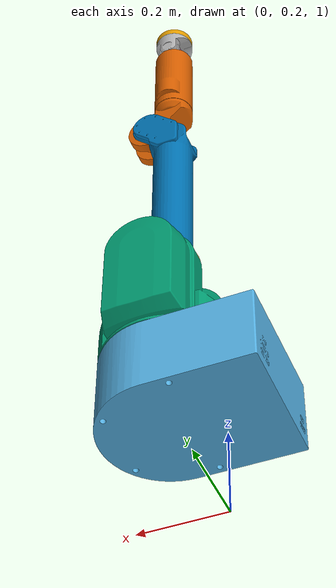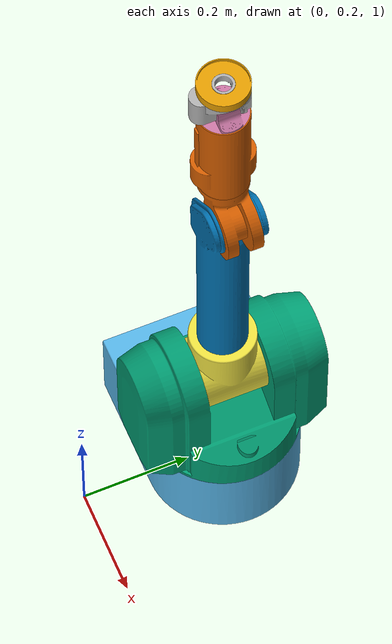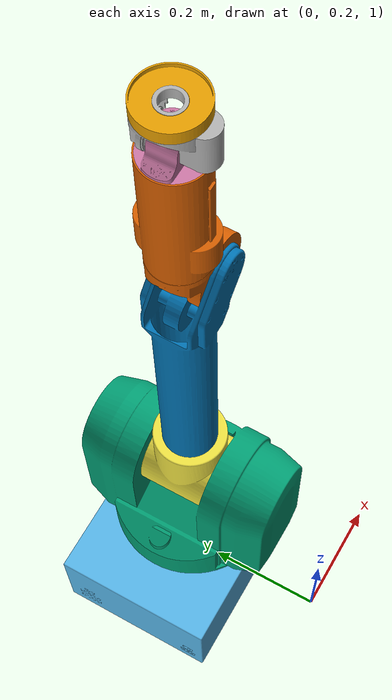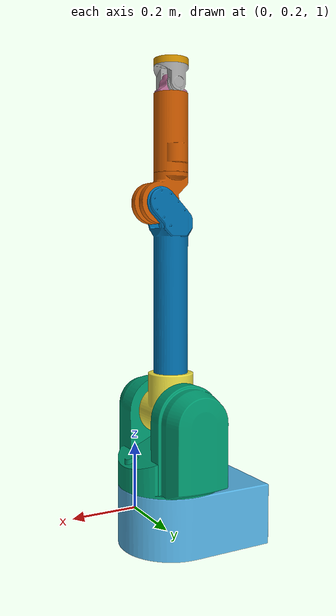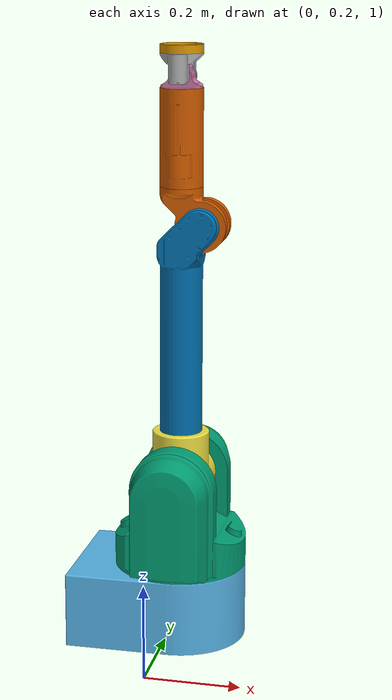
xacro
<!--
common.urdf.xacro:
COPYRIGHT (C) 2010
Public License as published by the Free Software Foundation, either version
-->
<robot name="wam"
  xmlns:xacro="http://www.ros.org/wiki/xacro">

  <!-- Includea all the WAM stuff -->
  <include filename="$(find barrett_model)/models/wam_top.urdf.xacro"/>

  <!-- Root link is in the world frame-->
  <link name = "world"/>

  <xacro:wam_7dof prefix="wam" parent_link="world" xyz="0.02 0.46 1" rpy="0 0 0" />
  <!--xacro:barrett_hand prefix="wam_left" /-->
</robot>

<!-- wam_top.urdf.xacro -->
<robot
  xmlns:xacro="http://www.ros.org/wiki/xacro"
  xmlns:controller="http://playerstage.sourceforge.net/gazebo/xmlschema/#controller">

  <!-- Some macros used by the WAM urdf -->
  <xacro:include filename="$(find barrett_model)/models/common.urdf.xacro"/>
  <!-- Definition of a single WAM arm -->
  <xacro:include filename="$(find barrett_model)/models/arm.urdf.xacro"/>
  <!-- Definition of all the different parts of a WAM arm -->
  <xacro:include filename="$(find barrett_model)/models/components.urdf.xacro"/>
  <!-- Definitions for the barrett hand -->
  <xacro:include filename="$(find barrett_model)/models/hand.urdf.xacro"/>

  <!-- Materials -->
  <material name="WAMGrey">
    <color rgba="0.7 0.7 0.7 1.0"/>
  </material>

</robot>

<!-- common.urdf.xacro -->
<robot xmlns:xacro="http://ros.org/wiki/xacro">

  <!-- Directories -->
  <xacro:property name="models_path" value="package://barrett_model/models" />
  <xacro:property name="highResModelDirectory" value="${models_path}/meshes/splitModels" />

  <!-- Constants -->
  <xacro:property name="PI" value="3.1415926535897931" />

  <!-- Gazebo macros -->
  <xacro:macro name="gazebo_reference" params="name">
    <gazebo reference="${name}">
      <turnGravityOff>
        false
      </turnGravityOff>
      <selfCollide>
        true
      </selfCollide>
    </gazebo>
  </xacro:macro>

  <!-- Gazebo joint configuration -->
  <xacro:macro name="gz_joint">
    <provideFeedback>true</provideFeedback>
    <implicitSpringDamper>true</implicitSpringDamper>
  </xacro:macro>

  <!-- Gazebo "soft" link which has compliant surface stiffness -->
  <xacro:macro name="gz_soft_link">
  </xacro:macro>

  <xacro:macro name="gz_shiny">
    <visual name='visual_shiny'>
      <xacro:if value="true">
        <material>
          <script>
            <uri>file://$(find barrett_model)/materials/barrett.material</uri>
            <name>Wam/Aluminum</name>
          </script>
        </material>
      </xacro:if>
      <xacro:if value="false">
        <material>
          <ambient>0.7 0.7 0.7 1</ambient>
          <diffuse>0.9 0.9 0.9 1</diffuse>
          <specular>0.5 0.5 0.5 0.3</specular>
          <emissive>0 0 0 0</emissive>
        </material>
      </xacro:if>
    </visual>
  </xacro:macro>

  <xacro:macro name="gz_shiny_blue">
    <visual name='visual_shiny'>
        <material>
          <script>
            <uri>file://$(find barrett_model)/materials/barrett.material</uri>
            <name>BHand/BlueAluminum</name>
          </script>
        </material>
    </visual>
  </xacro:macro>
</robot>

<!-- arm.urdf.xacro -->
<robot xmlns:xacro="http://www.ros.org/wiki/xacro">

  <xacro:include filename="$(find barrett_model)/models/common.urdf.xacro"/>
  <xacro:include filename="$(find barrett_model)/models/components.urdf.xacro"/>

  <xacro:macro name="wam_7dof" params="prefix parent_link xyz rpy">
    <xacro:wam prefix="${prefix}" parent_link="${parent_link}" xyz="${xyz}" rpy="${rpy}"/>
    <xacro:wam_wrist prefix="${prefix}"/>
  </xacro:macro>

  <xacro:macro name="wam_4dof" params="prefix parent_link xyz rpy">
    <xacro:wam prefix="${prefix}" parent_link="${parent_link}" xyz="${xyz}" rpy="${rpy}"/>
    <xacro:wam_stump prefix="${prefix}"/>
  </xacro:macro>

  <!-- upper arm only -->
  <xacro:macro name="wam" params="prefix parent_link xyz rpy">
    <xacro:wam_base prefix="${prefix}" parent_link="${parent_link}" xyz="${xyz}" rpy="${rpy}"/>
    <xacro:wam_shoulder_yaw prefix="${prefix}"/>
    <xacro:wam_shoulder_pitch prefix="${prefix}"/>
    <xacro:wam_upper_arm prefix="${prefix}"/>
  </xacro:macro>

  <!-- forearm with actuation "wrist" -->
  <xacro:macro name="wam_wrist" params="prefix">
    <xacro:wam_forearm prefix="${prefix}"/>
    <xacro:wam_wrist_yaw prefix="${prefix}"/>
    <xacro:wam_wrist_pitch prefix="${prefix}"/>
    <xacro:wam_palm prefix="${prefix}"/>
  </xacro:macro>

</robot>

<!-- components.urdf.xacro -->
<robot xmlns:xacro="http://ros.org/wiki/xacro">

  <xacro:include filename="$(find barrett_model)/models/hand.urdf.xacro"/>
  <xacro:include filename="$(find barrett_model)/models/common.urdf.xacro"/>
  <xacro:property name="b" value="0.5"/>

  <!-- Upper arm macros -->
  <xacro:macro name="wam_base" params="prefix parent_link xyz rpy">
    <joint name="${prefix}/wam_fixed_joint" type="fixed">
      <parent link="${parent_link}"/>
      <child link="${prefix}/base_link"/>
      <origin xyz="${xyz}" rpy="${rpy}"/>
    </joint>

    <gazebo reference="${prefix}/base_link">
      <xacro:gz_shiny/>
    </gazebo>

    <link name = "${prefix}/base_link">
      <inertial>
        <origin xyz="0 0 0" />
        <mass value="1" />
        <inertia
          ixx="0.1" ixy="0"   ixz="0"
                  iyy="0.1"   iyz="0"
                            izz="0.1" />
      </inertial>
      <visual>
        <geometry>
          <mesh filename="${models_path}/sw_meshes/base_link_fine.stl"/>
        </geometry>
      </visual>
      <collision>
        <geometry>
          <mesh filename="${models_path}/sw_meshes/base_link_convex.dae"/>
        </geometry>
      </collision>
    </link>
  </xacro:macro>

  <xacro:macro name="wam_shoulder_yaw" params="prefix">
    <joint name="${prefix}/base_yaw_joint" type="revolute">
      <parent link="${prefix}/base_link"/>
      <child link="${prefix}/shoulder_yaw_link"/>
      <origin xyz="0 0 0.346" rpy="0 0 0"/>
      <axis xyz="0 0 1"/>
      <limit effort="60" lower="-2.6" upper="2.6" velocity="2.0"/>
      <dynamics damping="${1.8*b}" friction="0"/>
    </joint>
    <gazebo reference="${prefix}/base_yaw_joint">
      <xacro:gz_joint/>
    </gazebo>

    <gazebo reference="${prefix}/shoulder_yaw_link">
      <xacro:gz_shiny/>
    </gazebo>

    <link name="${prefix}/shoulder_yaw_link" >
      <inertial>
        <origin xyz="-.00443422 -.00066489 -0.1289039 " />
        <mass value="5.0" />
        <inertia
          ixx=".13488033"  ixy="-0.00012485"   ixz="0.00213041"
                           iyy=".09046330"    iyz="-.00068555"
                                              izz=".11328369" />
      </inertial>
      <visual>
        <geometry>
          <mesh filename="${models_path}/sw_meshes/shoulder_link_fine.stl"/>
        </geometry>
      </visual>
      <collision>
        <geometry>
          <mesh filename="${models_path}/sw_meshes/shoulder_link_convex_decomposition.dae"/>
        </geometry>
      </collision>
    </link>
  </xacro:macro>

  <xacro:macro name="wam_shoulder_pitch" params="prefix">
    <joint name="${prefix}/shoulder_pitch_joint" type="revolute">
      <parent link="${prefix}/shoulder_yaw_link"/>
      <child link="${prefix}/shoulder_pitch_link"/>
      <origin xyz="0 0 0" rpy="${-PI/2} 0 0"/>
      <axis xyz="0 0 1"/>
      <limit effort="60" lower="-1.985" upper="1.985" velocity="2.0"/>
      <dynamics damping="${0.5*b}" friction="0"/>
    </joint>
    <gazebo reference="${prefix}/shoulder_pitch_joint">
      <xacro:gz_joint/>
    </gazebo>
    <gazebo reference="${prefix}/shoulder_pitch_link">
      <xacro:gz_shiny/>
    </gazebo>

    <link name="${prefix}/shoulder_pitch_link" >
      <visual>
        <geometry>
          <mesh filename="${models_path}/sw_meshes/shoulder_pitch_link_fine.stl"/>
        </geometry>
      </visual>
      <inertial>
        <origin xyz="-.00236981 -.01542114 .03105614 " />
        <mass value="3.87493756" />
        <inertia
          ixx="0.02140958"  ixy="-0.00002461"  ixz="0.00027172"
                            iyy="0.015589060"  iyz="0.0018192"
                                               izz="0.01377875" />
      </inertial>
      <collision>
        <geometry>
          <mesh filename="${models_path}/sw_meshes/shoulder_pitch_link_convex.dae"/>
        </geometry>
      </collision>
    </link>
  </xacro:macro>

  <xacro:macro name="wam_upper_arm" params="prefix">
    <joint name="${prefix}/shoulder_yaw_joint" type="revolute">
      <parent link="${prefix}/shoulder_pitch_link"/>
      <child link="${prefix}/upper_arm_link"/>
      <origin xyz="0 0 0" rpy="${PI/2} 0 0"/>
      <axis xyz="0 0 1"/>
      <limit effort="45" lower="-2.8" upper="2.8" velocity="2.0"/>
      <dynamics damping="${1.5*b}" friction="0"/>
    </joint>
    <gazebo reference="${prefix}/shoulder_yaw_joint">
      <xacro:gz_joint/>
    </gazebo>
    <gazebo reference="${prefix}/upper_arm_link">
      <xacro:gz_shiny/>
    </gazebo>

    <link name="${prefix}/upper_arm_link" >
      <inertial>
        <origin xyz="0.00683258580000000 0.000033090000000 0.392492300000000" />
        <mass value="2.20228141" />
        <inertia
          ixx=".05911077"  ixy="-0.00000738"  ixz="-0.00249612"
                           iyy="0.05927043"   iyz="0.00001767"
                                              izz="0.0032455" />
      </inertial>
      <visual>
        <geometry>
          <mesh filename="${models_path}/sw_meshes/upper_arm_link_fine.stl"/>
        </geometry>
      </visual>
      <collision>
        <geometry>
          <mesh filename="${models_path}/sw_meshes/upper_arm_link_convex_decomposition.dae"/>
        </geometry>
      </collision>
    </link>
  </xacro:macro>

  <!-- Forearm macros -->
  <xacro:macro name="wam_forearm" params="prefix">
    <joint name="${prefix}/elbow_pitch_joint" type="revolute">
      <parent link="${prefix}/upper_arm_link"/>
      <child link="${prefix}/forearm_link"/>
      <origin xyz="0.045 0 0.55" rpy="${-PI/2} 0 0"/>
      <axis xyz="0 0 1"/>
      <limit effort="30" lower="-0.9" upper="${PI}" velocity="2.00"/>
      <dynamics damping="${0.8*b}" friction="0"/>
    </joint>
    <gazebo reference="${prefix}/elbow_pitch_joint">
      <xacro:gz_joint/>
    </gazebo>
    <gazebo reference="${prefix}/forearm_link">
      <xacro:gz_shiny/>
    </gazebo>
    <link name="${prefix}/forearm_link" >
      <inertial>
        <mass value="0.50016804" />
        <origin xyz="-0.04001488 -.14271662 -.00022942 " rpy="0 0 0" />
        <inertia
          ixx="0.01491672" ixy="0.001506040000000" ixz="0.000017410000000"
                           iyy="0.002944630000000" iyz="0.000021090000000"
                                                   izz="0.014829880000000" />
      </inertial>
      <visual>
        <geometry>
          <mesh filename="${models_path}/sw_meshes/elbow_link_fine.stl"/>
        </geometry>
      </visual>
      <collision>
        <geometry>
          <mesh filename="${models_path}/sw_meshes/elbow_link_convex.dae"/>
        </geometry>
      </collision>

      <visual>
        <origin xyz="-0.045 -0.0730 0" rpy="${PI/2} 0 0" />
        <geometry>
          <mesh filename="${models_path}/sw_meshes/forearm_link_fine.stl"/>
        </geometry>
      </visual>
      <collision>
        <origin xyz="-0.045 -0.0730 0" rpy="${PI/2} 0 0" />
        <geometry>
          <mesh filename="${models_path}/sw_meshes/forearm_link_convex_decomposition.dae"/>
        </geometry>
      </collision>
    </link>
  </xacro:macro>

  <xacro:macro name="wam_wrist_yaw" params="prefix">
    <joint name="${prefix}/wrist_yaw_joint" type="revolute">
      <parent link="${prefix}/forearm_link"/>
      <child link="${prefix}/wrist_yaw_link"/>
      <origin xyz="-0.045 -0.3 0" rpy="${PI/2} 0 0"/>
      <axis xyz="0 0 1"/>
      <limit effort="10" lower="-4.55" upper="1.25" velocity="2.0"/>
      <dynamics damping="${0.5*b}" friction="0"/>
    </joint>
    <gazebo reference="${prefix}/wrist_yaw_joint">
      <xacro:gz_joint/>
    </gazebo>
    <gazebo reference="${prefix}/wrist_yaw_link">
      <xacro:gz_shiny/>
    </gazebo>
    <link name="${prefix}/wrist_yaw_link" >
      <inertial>
        <origin xyz="0.00008921 0.00435824 -0.00511217 " />
        <mass value="1.05376019" />
        <inertia  ixx="0.00005029" ixy="0.00000020"  ixz="0.00007582"
          iyy="0.00007582"  iyz="-0.00000359"
          izz="0.00006270" />
      </inertial>
      <visual>
        <origin xyz="0 0 0" rpy="0 0 0" />
        <geometry>
          <mesh filename="${models_path}/sw_meshes/wrist_yaw_link_fine.stl"/>
        </geometry>
      </visual>
      <collision>
        <origin xyz="0 0 0" rpy="0 0 0" />
        <geometry>
          <mesh filename="${models_path}/sw_meshes/wrist_yaw_link_convex_decomposition.dae"/>
        </geometry>
      </collision>
    </link>
  </xacro:macro>

  <xacro:macro name="wam_wrist_pitch" params="prefix">
    <joint name="${prefix}/wrist_pitch_joint" type="revolute">
      <parent link="${prefix}/wrist_yaw_link"/>
      <child link="${prefix}/wrist_pitch_link"/>
      <origin xyz="0 0 0" rpy="${-PI/2} 0 0"/>
      <axis xyz="0 0 1"/>
      <limit effort="10" lower="-1.5707" upper="1.5707" velocity="2.00"/>
      <dynamics damping="${0.1*b}" friction="0"/>
    </joint>
    <gazebo reference="${prefix}/wrist_pitch_joint">
      <xacro:gz_joint/>
    </gazebo>
    <gazebo reference="${prefix}/wrist_pitch_link">
      <xacro:gz_shiny/>
    </gazebo>
    <link name="${prefix}/wrist_pitch_link" >
      <inertial>
        <origin xyz="-0.00012262 -0.02468336 -0.01703194 " rpy="0 0 0" />
        <mass value="0.51797364" />
        <inertia
          ixx="0.00055516"  ixy="0.00000061"  ixz="-0.00000074"
          iyy="0.00024367"  iyz="-0.00004590"
          izz="0.00045358" />
      </inertial>
      <visual>
        <geometry>
          <mesh filename="${models_path}/sw_meshes/wrist_pitch_link_fine.stl"/>
        </geometry>
      </visual>
      <collision>
        <geometry>
          <mesh filename="${models_path}/sw_meshes/wrist_pitch_link_convex_decomposition.dae"/>
        </geometry>
      </collision>
    </link>
  </xacro:macro>

  <!-- Palm without force-torque sensor -->
  <xacro:macro name="wam_palm" params="prefix">
    <joint name="${prefix}/palm_yaw_joint" type="revolute">
      <parent link="${prefix}/wrist_pitch_link"/>
      <child link="${prefix}/wrist_palm_link"/>
      <origin xyz="0 0 0" rpy="${PI/2} 0 0"/>
      <axis xyz="0 0 1"/>
      <limit effort="10" lower="-3.0" upper="3.0" velocity="2.00"/><!-- 2.95 is a limit taken in from 3 due to saftey and differences between arms. -->
      <dynamics damping="${0.3*b}" friction="0"/>
    </joint>
    <gazebo reference="${prefix}/palm_yaw_joint">
      <xacro:gz_joint/>
    </gazebo>
    <gazebo reference="${prefix}/wrist_palm_link">
      <xacro:gz_shiny/>
    </gazebo>
    <link name="${prefix}/wrist_palm_link" >
      <inertial>
        <origin xyz="0.0 0.0 0.055" rpy="0 0 0" />
        <mass value="0.08286134" />
        <inertia  ixx="0.00010859" ixy="0.00000000"  ixz="-0.00000000"
          iyy="0.00020683"  iyz="-0.0000000"
          izz="0.00010851" />
      </inertial>
      <visual>
        <origin xyz="0 0 0" rpy="0 0 0" />
        <geometry>
          <mesh filename="${models_path}/sw_meshes/wrist_palm_link_fine.stl"/>
        </geometry>
      </visual>
      <collision>
        <origin xyz="0 0 0" rpy="0 0 0" />
        <geometry>
          <mesh filename="${models_path}/sw_meshes/wrist_palm_link_convex.dae"/>
        </geometry>
      </collision>
    </link>
  </xacro:macro>

  <xacro:macro name="wam_wrist_palm_stump" params="prefix">
    <joint name="${prefix}/wrist_palm_stump_joint" type="fixed">
      <parent link="${prefix}/wrist_palm_link"/>
      <child link="${prefix}/wrist_palm_stump_link"/>
      <origin xyz="0 0 0.06" rpy="0 0 0"/>
    </joint>
    <link name="${prefix}/wrist_palm_stump_link" >
      <inertial>
        <mass value="0.000001" />
        <inertia
          ixx="0.0000001" ixy="0.0" ixz="0.0"
          iyy="0.0000001" iyz="0.0"
          izz="0.0000001" />
      </inertial>
    </link>
  </xacro:macro>

  <!-- Hollow forearm macros -->
          <!--iyy="0.01482988"   iyz="-0.00002109"-->

          <!--iyy="0.00007582"  iyz="-0.00000359"-->

  <!-- Palm with ForceTorque macros -->
          <!--iyy="0.00020683"  iyz="-0.0000000"-->

  <xacro:macro name="wam_stump" params="prefix">
    <joint name="${prefix}/elbow_pitch_joint" type="revolute">
      <parent link="${prefix}/upper_arm_link"/>
      <child link="${prefix}/stump_link"/>
      <origin xyz="0.045 0 0.55" rpy="${-PI/2} 0 0"/>
      <axis xyz="0 0 1"/>
      <limit effort="15" lower="-0.9" upper="${PI}" velocity="2.0"/>
      <dynamics damping="${0.1*b}" friction="0"/>
    </joint>
    <link name="${prefix}/stump_link" >
      <inertial>
        <mass value="0.408" />
        <origin xyz="-0.0195 -.02566 -.00022942 " rpy="0 0 0" />
        <inertia
          ixx="0.01491672" ixy="0.001506040000000" ixz="0.000017410000000"
                           iyy="0.002944630000000" iyz="0.000021090000000"
                                                   izz="0.014829880000000" />
      </inertial>
      <visual>
        <geometry>
          <mesh filename="${models_path}/sw_meshes/elbow_link_fine.stl"/>
        </geometry>
      </visual>
      <collision>
        <geometry>
          <mesh filename="${models_path}/sw_meshes/elbow_link_convex.dae"/>
        </geometry>
      </collision>
    </link>
  </xacro:macro>
</robot>

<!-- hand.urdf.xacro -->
<robot xmlns:xacro="http://www.ros.org/wiki/xacro">

  <xacro:include filename="$(find barrett_model)/models/common.urdf.xacro"/>

  <!-- link properties -->
  <xacro:macro name="gz_hand_link" params="soft collide contacts">
    <mu1>0.5</mu1>
    <mu2>0.5</mu2>
    <maxContacts>${contacts}</maxContacts>
    <xacro:if value="${collide}">
      <selfCollide>false</selfCollide>
    </xacro:if>
    <xacro:if value="${soft}">
      <xacro:gz_soft_link/>
      <kd>0.1</kd>
    </xacro:if>
  </xacro:macro>

  <!-- joint properties -->
  <xacro:property name="b" value="0.5"/>
  <xacro:property name="f" value="0"/>
  <xacro:macro name="gz_hand_joint" params="feedback">
    <provideFeedback>${feedback}</provideFeedback>
  </xacro:macro>

  <!-- High-level hand macro -->
  <xacro:macro name="bhand" params="parent_link prefix xyz rpy primitive">
    <xacro:bhand_palm parent_link="${parent_link}" prefix="${prefix}" xyz="${xyz}" rpy="${rpy}" primitive="${primitive}"/>
    <xacro:bhand_finger_1 prefix="${prefix}" primitive="${primitive}"/>
    <xacro:bhand_finger_2 prefix="${prefix}" primitive="${primitive}"/>
    <xacro:bhand_finger_3 prefix="${prefix}" primitive="${primitive}"/>

    <!-- don't use the gazebo gripper plugin, just slows down the sim -->
    <xacro:if value="false">
      <gazebo>
        <gripper name="bhand">
          <grasp_check>
              <attach_steps>10</attach_steps>
              <detach_steps>20</detach_steps>
              <min_contact_count>2</min_contact_count>
          </grasp_check>
          <palm_link>${prefix}/bhand_palm_link</palm_link>
          <gripper_link>${prefix}/finger_1/med_link</gripper_link>
          <gripper_link>${prefix}/finger_2/med_link</gripper_link>
          <gripper_link>${prefix}/finger_3/med_link</gripper_link>
          <gripper_link>${prefix}/finger_1/dist_link</gripper_link>
          <gripper_link>${prefix}/finger_2/dist_link</gripper_link>
          <gripper_link>${prefix}/finger_3/dist_link</gripper_link>
        </gripper>
      </gazebo>
    </xacro:if>
  </xacro:macro>

  <!-- Fingers -->
  <xacro:macro name="bhand_finger_1" params="prefix primitive">
    <xacro:bhand_finger_prox prefix="${prefix}/finger_1" primitive="${primitive}" parent_link="${prefix}/bhand_palm_link" xyz="-0.025 0.0 0.0415" rpy="0 0 -${PI/2}" axis="0 0 -1"/>
    <xacro:bhand_finger_med prefix="${prefix}/finger_1" primitive="${primitive}" parent_link="${prefix}/finger_1/prox_link" xyz="0.05 0.0 0.03390" rpy="${PI/2} 0 0"/>
    <xacro:bhand_finger_dist prefix="${prefix}/finger_1" primitive="false"/>
    <xacro:bhand_finger_tip prefix="${prefix}/finger_1"/>
  </xacro:macro>

  <xacro:macro name="bhand_finger_2" params="prefix primitive">
    <xacro:bhand_finger_prox prefix="${prefix}/finger_2" primitive="${primitive}" parent_link="${prefix}/bhand_palm_link" xyz="0.025 0.0 0.0415" rpy="0 0 -${PI/2}" axis="0 0 1"/>
    <xacro:bhand_finger_med prefix="${prefix}/finger_2" primitive="${primitive}" parent_link="${prefix}/finger_2/prox_link" xyz="0.05 0.0 0.03390" rpy="${PI/2} 0 0"/>
    <xacro:bhand_finger_dist prefix="${prefix}/finger_2" primitive="false"/>
    <xacro:bhand_finger_tip prefix="${prefix}/finger_2"/>
  </xacro:macro>

  <xacro:macro name="bhand_finger_3" params="prefix primitive">
    <xacro:bhand_finger_med prefix="${prefix}/finger_3" primitive="${primitive}" parent_link="${prefix}/bhand_palm_link" xyz="0 0.05 0.0754" rpy="${PI/2} 0 ${PI/2}"/>
    <xacro:bhand_finger_dist prefix="${prefix}/finger_3" primitive="false"/>
    <xacro:bhand_finger_tip prefix="${prefix}/finger_3"/>
  </xacro:macro>

  <!-- Components -->
  <xacro:macro name="bhand_palm" params="prefix parent_link xyz rpy primitive">
    <joint name="${prefix}/bhand_base_joint" type="fixed">
      <parent link="${parent_link}"/>
      <child link="${prefix}/bhand_palm_link"/>
      <origin xyz="${xyz}" rpy="${rpy}"/>
    </joint>
    <gazebo reference="${prefix}/bhand_palm_link">
      <xacro:gz_hand_link collide="false" soft="false" contacts="3"/>
      <xacro:gz_shiny_blue/>
    </gazebo>
    <link name="${prefix}/bhand_palm_link">
      <inertial>
        <origin xyz="-5.1098e-005 0.0050433 0.036671"/>
        <mass value="0.50573" />
        <inertia
          ixx="3.8374e-005" ixy="-5.604e-008"  ixz="-4.2034e-005"
                           iyy="0.00022405"   iyz="1.3283e-007"
                                              izz="0.00020045" />
      </inertial>
      <visual>
        <geometry>
          <mesh filename="${models_path}/sw_meshes/bhand/bhand_palm_fine.stl"/>
        </geometry>
      </visual>
      <xacro:if value="${primitive}">
        <!-- wrist -->
        <collision><origin xyz="0 0 0.02029"/><geometry><cylinder radius="0.045" length="0.042"/></geometry></collision>
        <!-- spine -->
        <collision><origin xyz="0 0.01105 0.05768"/><geometry><box size="0.024 0.108 0.033"/></geometry></collision>
        <!-- palm -->
        <collision><origin xyz="0 0 0.07243"/><geometry><box size="0.076 0.046 0.012"/></geometry></collision>
        <!-- F1 knuckle -->
        <collision><origin xyz="0 0.05 0.07527" rpy="0 1.5707 0"/><geometry><cylinder radius="0.015" length="0.024"/></geometry></collision>
      </xacro:if>
      <xacro:unless value="${primitive}">
        <collision>
          <geometry>
            <mesh filename="${models_path}/sw_meshes/bhand/bhand_palm_link_convex_decomposition.dae"/>
          </geometry>
        </collision>
      </xacro:unless>
    </link>

    <joint name="${prefix}/bhand_palm_surface_joint" type="fixed">
      <parent link="${prefix}/bhand_palm_link"/>
      <child link="${prefix}/bhand_palm_surface_link"/>
      <origin xyz="0 0 0.08" rpy="0 0 0"/>
      <limit effort="30" lower="0" upper="${PI}" velocity="5.0"/>
    </joint>
    <link name="${prefix}/bhand_palm_surface_link">
      <inertial>
        <mass value="0.00001" />
        <inertia
          ixx="0.000001" ixy="0.0"  ixz="0.0"
          iyy="0.000001" iyz="0.0"
          izz="0.000001" />
      </inertial>
    </link>

    <joint name="${prefix}/bhand_grasp_joint" type="fixed">
      <parent link="${prefix}/bhand_palm_link"/>
      <child link="${prefix}/bhand_grasp_link"/>
      <origin xyz="0 0 0.12" rpy="0 0 0"/>
      <limit effort="30" lower="0" upper="${PI}" velocity="5.0"/>
    </joint>
    <link name="${prefix}/bhand_grasp_link">
      <collision><!-- https://github.com/ros-planning/moveit_core/issues/158 -->
        <origin xyz="0 0 -0.13" rpy="0 0 0"/>
        <geometry>
          <sphere radius="0.001"/>
        </geometry>
      </collision>
      <inertial>
        <mass value="0.00001" />
        <inertia
          ixx="0.000001" ixy="0.0"  ixz="0.0"
          iyy="0.000001" iyz="0.0"
          izz="0.000001" />
      </inertial>
    </link>
  </xacro:macro>

  <xacro:macro name="bhand_finger_prox" params="prefix parent_link xyz rpy axis primitive">
    <joint name="${prefix}/prox_joint" type="revolute">
      <parent link="${parent_link}"/>
      <child link="${prefix}/prox_link"/>
      <origin xyz="${xyz}" rpy="${rpy}"/>
      <axis xyz="${axis}"/>
      <limit effort="5" lower="0" upper="${PI}" velocity="10.0"/>
      <dynamics damping="0.35" friction="${f}"/>
    </joint>
    <gazebo reference="${prefix}/prox_joint">
      <xacro:gz_hand_joint feedback="true"/>
      <cfmDamping>true</cfmDamping>
    </gazebo>
    <gazebo reference="${prefix}/prox_link">
      <xacro:gz_hand_link collide="false" soft="false" contacts="1"/>
      <xacro:gz_shiny_blue/>
    </gazebo>
    <link name="${prefix}/prox_link">
      <inertial>
        <origin xyz="0.023133 0.00078642 0.00052792" />
        <mass value="0.14109" />
        <inertia
          ixx="4.872e-006" ixy="1.7103e-006"  ixz="3.4041e-008"
                           iyy="7.6588e-005"  iyz="2.3133e-008"
                                              izz="7.7733e-005" />
      </inertial>
      <visual>
        <material name="WAMGrey">
          <color rgba="0.9 0.9 0.9 0.0"/>
        </material>
        <geometry>
          <mesh filename="${models_path}/sw_meshes/bhand/bhand_finger_prox_link_fine.stl"/>
        </geometry>
      </visual>
      <xacro:if value="${primitive}">
        <!-- base -->
        <collision><origin xyz="0.03217 0.0 0.01674"/><geometry><box size="0.066 0.024 0.033"/></geometry></collision>
        <!-- F2/F3 knuckle -->
        <collision><origin xyz="0.05 0.0 0.034" rpy="1.5707 0 0"/><geometry><cylinder radius="0.015" length="0.024"/></geometry></collision>
      </xacro:if>
      <xacro:unless value="${primitive}">
        <collision>
          <geometry>
            <mesh filename="${models_path}/sw_meshes/bhand/bhand_finger_prox_link_convex_decomposition.dae"/>
          </geometry>
        </collision>
      </xacro:unless>
    </link>
  </xacro:macro>

  <xacro:macro name="bhand_finger_med" params="prefix parent_link xyz rpy primitive">
    <joint name="${prefix}/med_joint" type="revolute">
      <parent link="${parent_link}"/>
      <child link="${prefix}/med_link"/>
      <origin xyz="${xyz}" rpy="${rpy}"/>
      <axis xyz="0 0 1"/>
      <limit effort="30" lower="0" upper="${140/180*PI}" velocity="10.00"/>
      <dynamics damping="0.35" friction="${f}"/>
    </joint>
    <gazebo reference="${prefix}/med_joint">
      <xacro:gz_hand_joint feedback="true"/>
      <cfmDamping>true</cfmDamping>
    </gazebo>
    <gazebo reference="${prefix}/med_link">
      <xacro:gz_hand_link collide="false" soft="true" contacts="1"/>
      <xacro:gz_shiny/>
    </gazebo>
    <link name="${prefix}/med_link">
      <inertial>
        <origin xyz="0.023133 0.00078642 0.00052792" />
        <mass value="0.062139" />
        <inertia
          ixx="4.872e-006" ixy="1.7103e-006"  ixz="3.4041e-008"
                           iyy="7.6588e-005"  iyz="2.3133e-008"
                                              izz="7.7733e-005" />
      </inertial>
      <visual>
        <material name="WAMGrey">
          <color rgba="0.9 0.9 0.9 0.0"/>
        </material>
        <geometry>
          <mesh filename="${models_path}/sw_meshes/bhand/bhand_finger_med_link_fine.stl"/>
        </geometry>
      </visual>
      <xacro:if value="${primitive}">
        <!-- spine -->
        <collision><origin xyz="0.03493 0.003 -0.0007"/><geometry><box size="0.07 0.019 0.006"/></geometry></collision>
        <!-- protrusion -->
        <collision><origin xyz="0.03894 0.00376 -0.0007"/><geometry><box size="0.031 0.023 0.019"/></geometry></collision>
      </xacro:if>
      <xacro:unless value="${primitive}">
        <collision>
          <geometry>
            <mesh filename="${models_path}/sw_meshes/bhand/bhand_finger_med_link_convex.dae"/>
          </geometry>
        </collision>
      </xacro:unless>
    </link>
  </xacro:macro>

  <xacro:macro name="bhand_finger_dist" params="prefix primitive">
    <joint name="${prefix}/dist_joint" type="revolute">
      <parent link="${prefix}/med_link"/>
      <child link="${prefix}/dist_link"/>
      <origin xyz="0.06994 0.003 0.0" rpy="0 0 ${PI/4}"/>
      <axis xyz="0 0 1"/>
      <limit effort="30" lower="0" upper="${48/180*PI}" velocity="10.00"/>
      <dynamics damping="0.35" friction="${f}"/>
    </joint>
    <gazebo reference="${prefix}/dist_joint">
      <xacro:gz_hand_joint feedback="true"/>
      <cfmDamping>true</cfmDamping>
    </gazebo>
    <gazebo reference="${prefix}/dist_link">
      <xacro:gz_hand_link collide="true" soft="true" contacts="1"/>
      <xacro:gz_shiny/>
    </gazebo>
    <link name="${prefix}/dist_link">
      <inertial>
        <origin xyz="0.022825 0.0010491 0.0004203" rpy="0 0 0"/>
        <mass value="0.041377" />
        <inertia
          ixx="3.1582e-006" ixy="1.4308e-006"  ixz="1.0106e-007"
                           iyy="3.8376e-005"   iyz="0"
                                              izz="3.7275e-005" />
      </inertial>
      <visual>
        <origin rpy="0 0 ${-PI/4}"/>
        <material name="WAMGrey">
          <color rgba="0.9 0.9 0.9 0.0"/>
        </material>
        <geometry>
          <mesh filename="${models_path}/sw_meshes/bhand/bhand_finger_dist_link_fine.stl"/>
        </geometry>
      </visual>
      <xacro:if value="${primitive}">
        <!-- base -->
        <collision><origin xyz="0 0 -0.0007"/><geometry><cylinder length="0.023" radius="0.0095"/></geometry></collision>
        <!-- tip -->
        <collision><origin xyz="0.05047 -0.00236 -0.0007"/><geometry><cylinder length="0.023" radius="0.0065"/></geometry></collision>
        <!-- outer -->
        <collision><origin xyz="0.02896 -0.00853 -0.0007" rpy="0 0 0"/><geometry><box size="0.059 0.002 0.023"/></geometry></collision>
        <!-- inner -->
        <collision><origin xyz="0.02538 0.00124 -0.0007" rpy="0 0 ${-6.0/180.0*PI}"/><geometry><box size="0.052 0.011 0.023"/></geometry></collision>
      </xacro:if>
      <xacro:unless value="${primitive}">
        <collision>
          <origin rpy="0 0 ${-PI/4}"/>
          <geometry>
            <mesh filename="${models_path}/sw_meshes/bhand/bhand_finger_dist_link_convex.dae"/>
          </geometry>
        </collision>
      </xacro:unless>
    </link>
  </xacro:macro>

  <xacro:macro name="bhand_finger_tip" params="prefix">
    <joint name="${prefix}/tip_joint" type="fixed">
      <parent link="${prefix}/dist_link"/>
      <child link="${prefix}/tip_link"/>
      <origin xyz="0.05 0.0 0.0" rpy="0 0 0"/>
    </joint>
    <link name="${prefix}/tip_link">
      <inertial>
        <mass value="1E-6" />
        <inertia
          ixx="1E-6" ixy="0"    ixz="0"
                     iyy="1E-6" iyz="0"
                                izz="1E-6" />
      </inertial>
    </link>
  </xacro:macro>

</robot>
